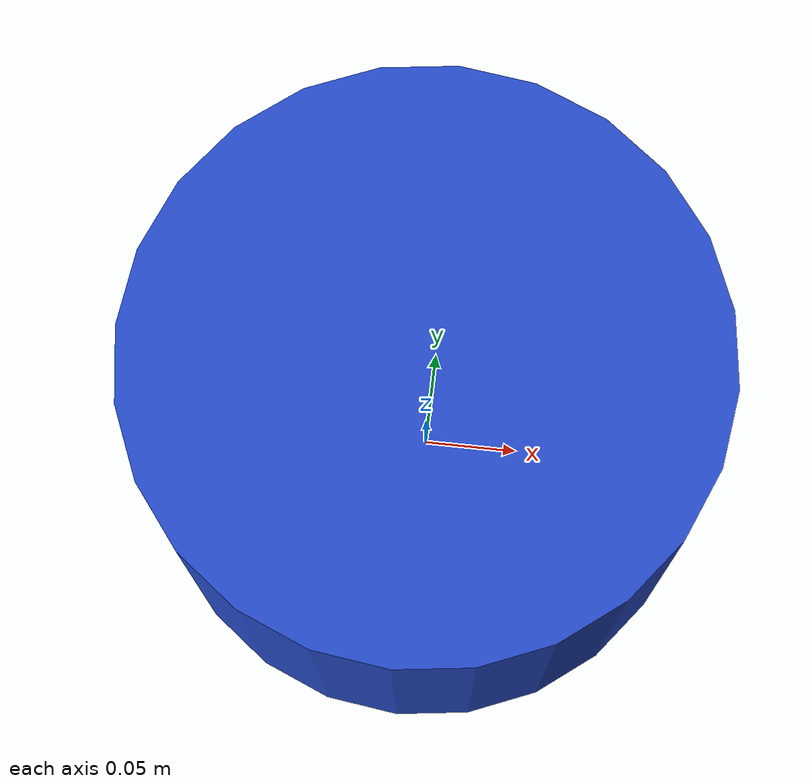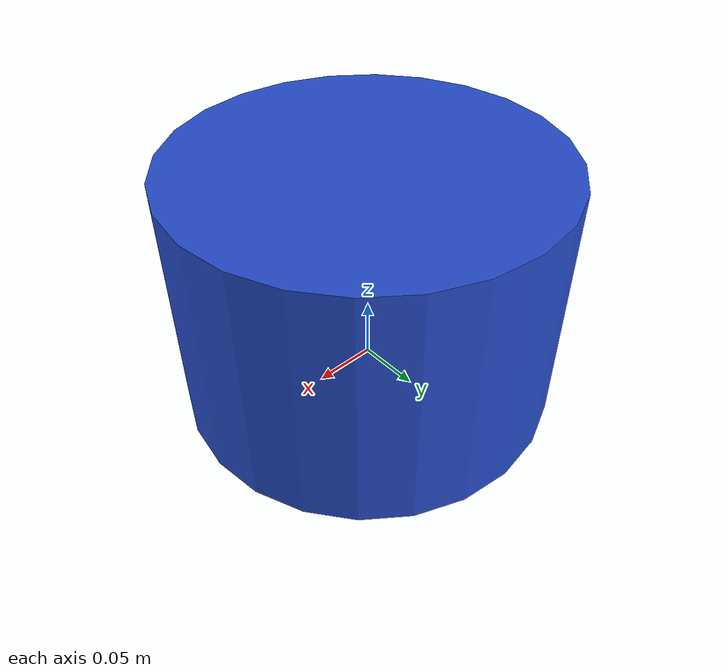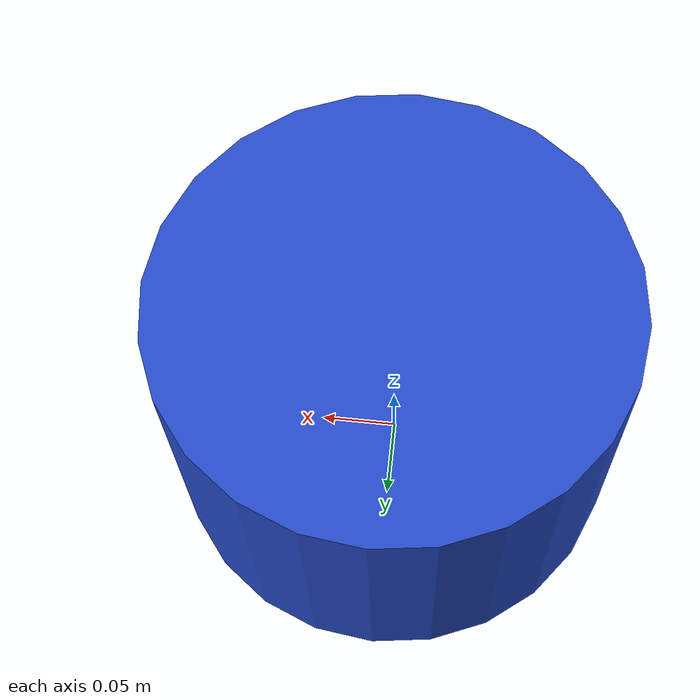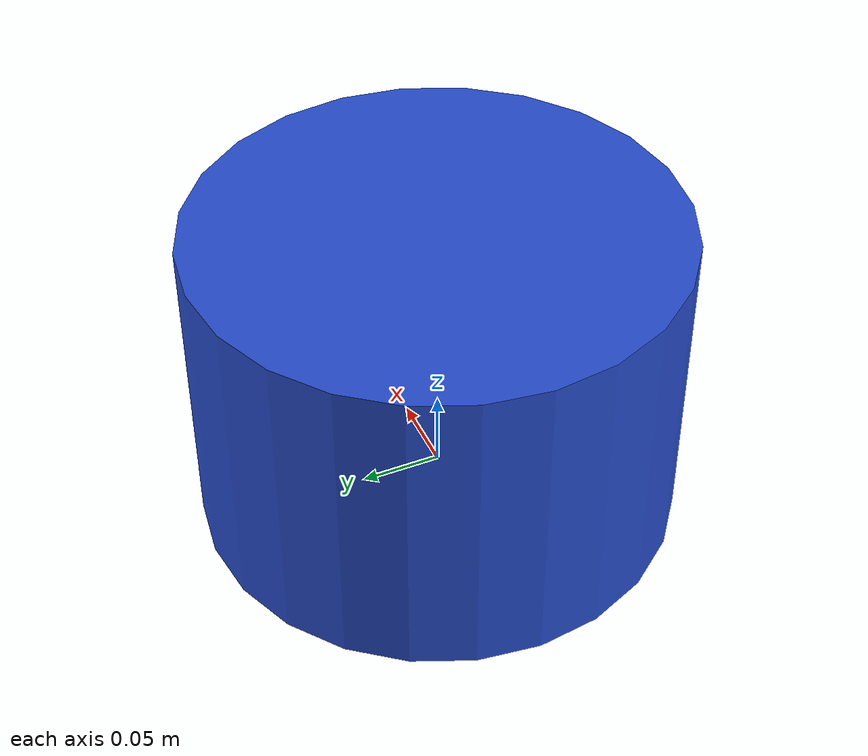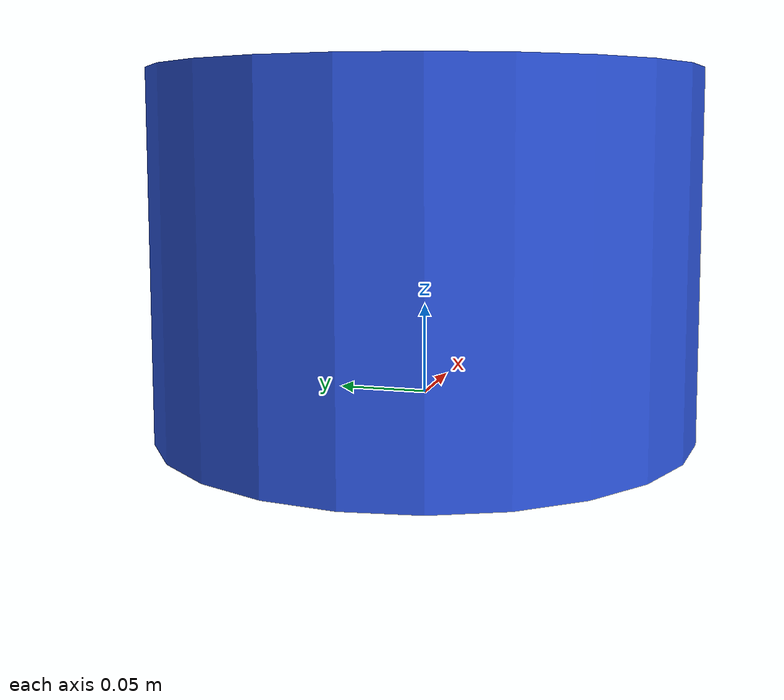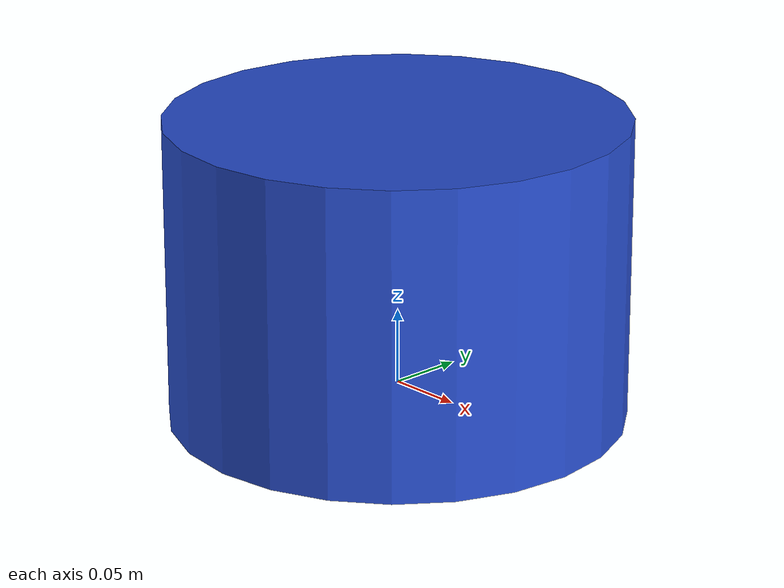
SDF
<?xml version='1.0'?>
<sdf version="1.4">
<model name="Blue cylinder object">
  <pose>0 0 0.08 0 0 0</pose>
  <static>false</static>
    <link name="link">
      <inertial>
        <mass>0.5</mass>
        <inertia>
          <ixx>0.083</ixx>
          <ixy>0.0</ixy>
          <ixz>0.0</ixz>
          <iyy>0.083</iyy>
          <iyz>0.0</iyz>
          <izz>0.083</izz>
        </inertia>
      </inertial>
      <collision name="collision">
        <geometry>
          <cylinder>
            <radius>0.15</radius>
            <length>0.2</length>
          </cylinder>
        </geometry>
      </collision>
      <visual name="visual">
        <geometry>
          <cylinder>
            <radius>0.15</radius>
            <length>0.2</length>
          </cylinder>
        </geometry>
        <material>
            <script>
              <uri>file://media/materials/scripts/gazebo.material</uri>
              <name>Gazebo/Blue</name>
            </script>
        </material>
      </visual>
    </link>
    <!--plugin name="differential_controller" filename="libhector_quadrotor_controller.so"/-->
  </model>
</sdf>
